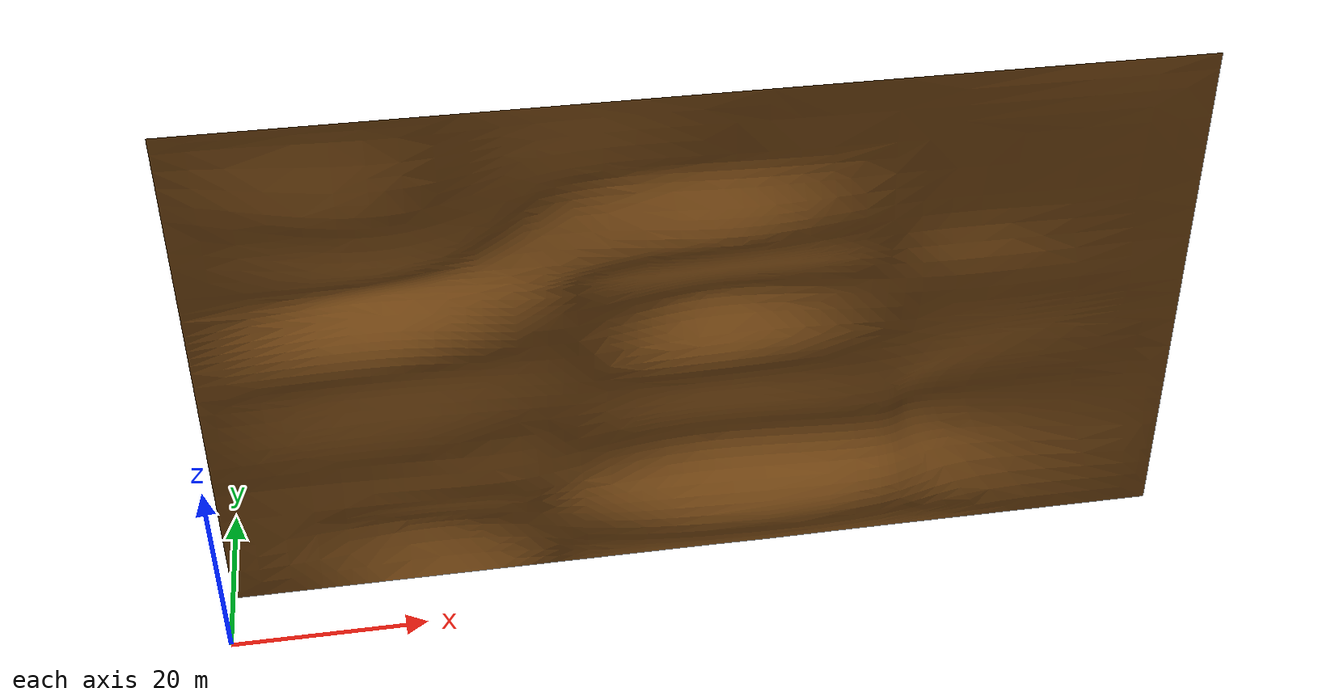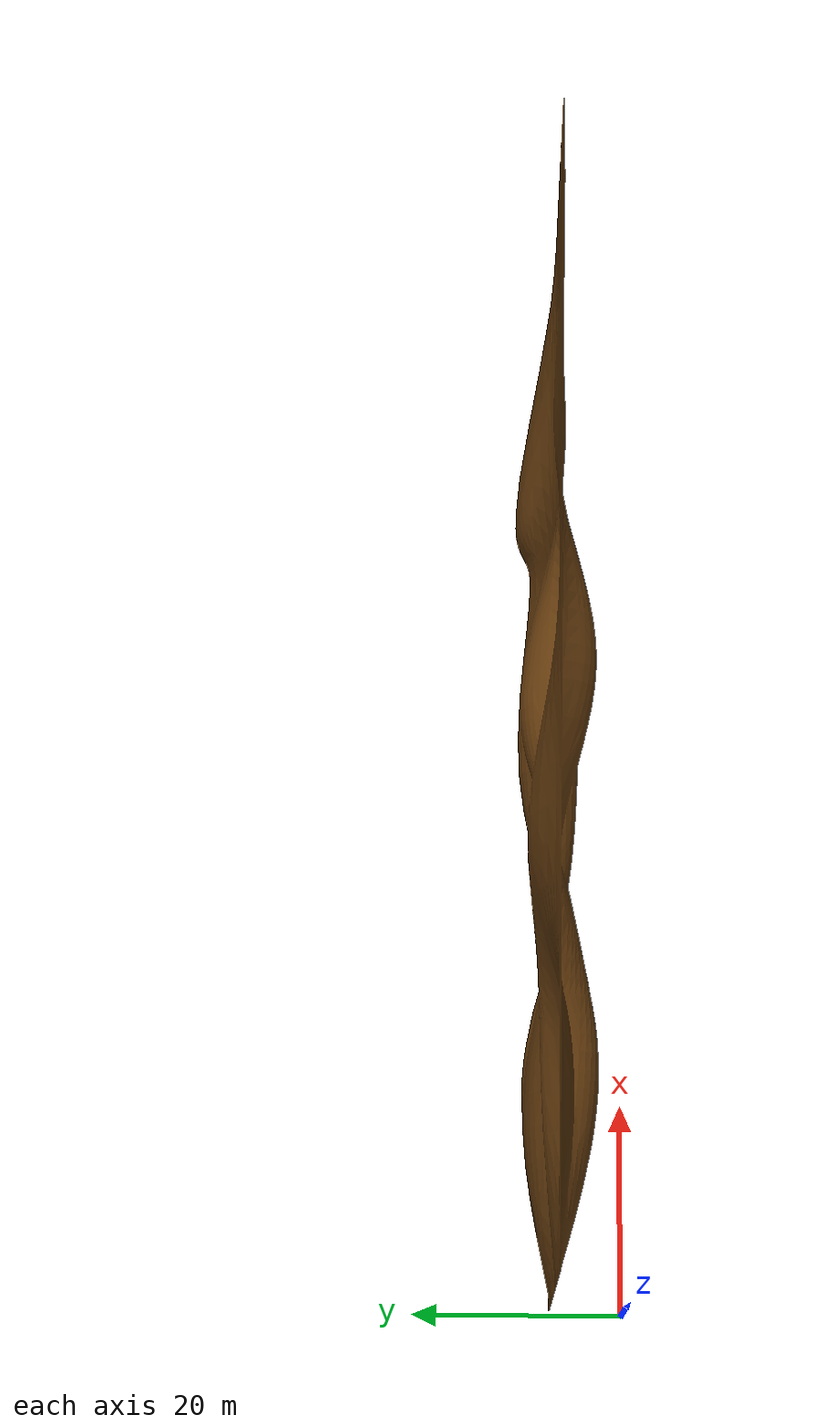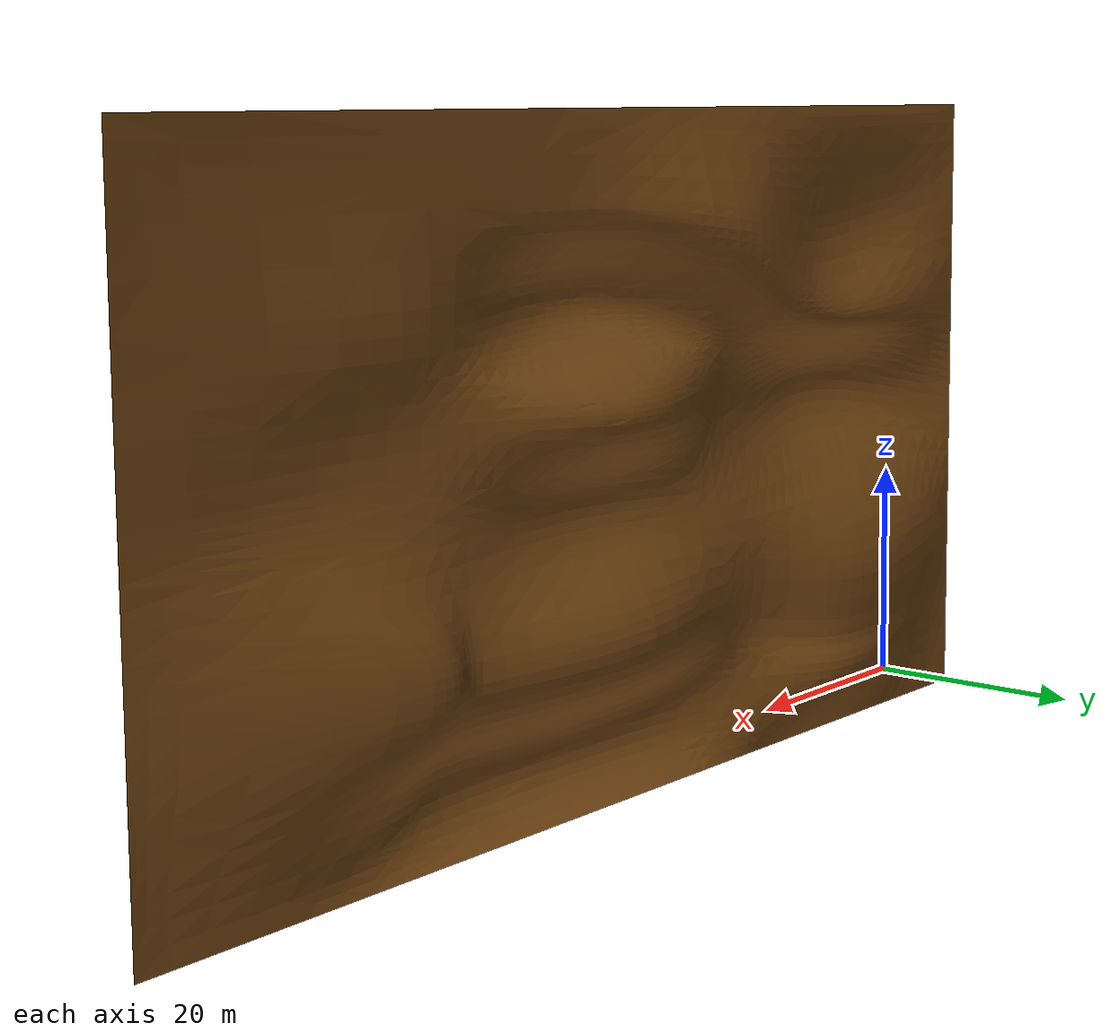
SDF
<?xml version="1.0" ?>
<sdf version="1.6">
  <model name="terrain">
    <static>true</static>
    <link name="link">
      <collision name="collision">
        <geometry>
          <mesh>
            <scale>1 1 0.55</scale>
            <uri>model://terrain/meshes/terrain.dae</uri>
          </mesh>
        </geometry>
      </collision>
      <visual name="visual">
        <geometry>
          <mesh>
            <scale>1 1 0.55</scale>
            <uri>model://terrain/meshes/terrain.dae</uri>
          </mesh>
        </geometry>
        <material>
          <ambient>0.45 0.27 0.07 1</ambient>
          <diffuse>0.45 0.27 0.07 1</diffuse>
          <specular>0 0 0 0</specular>
          <emissive>0 0 0 1</emissive>
        </material>
      </visual>
    </link>

  </model>
</sdf>
